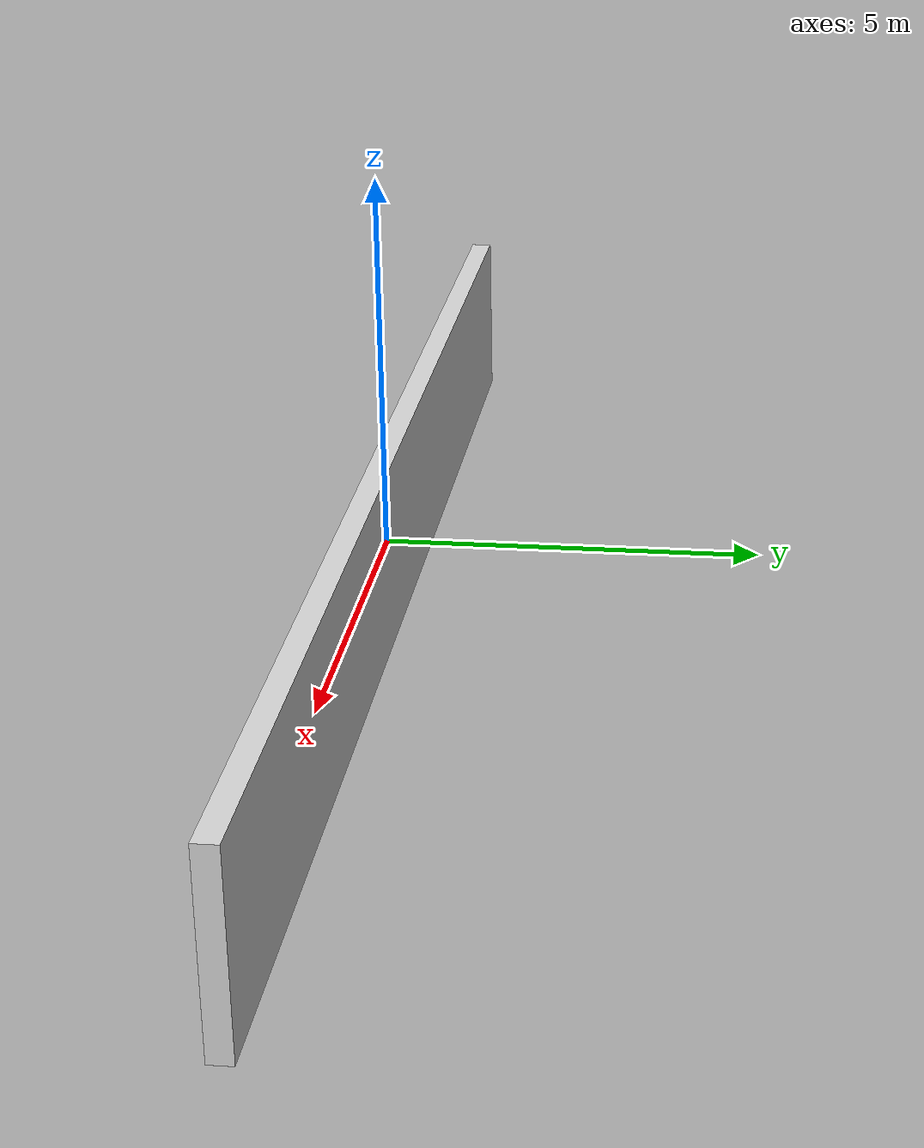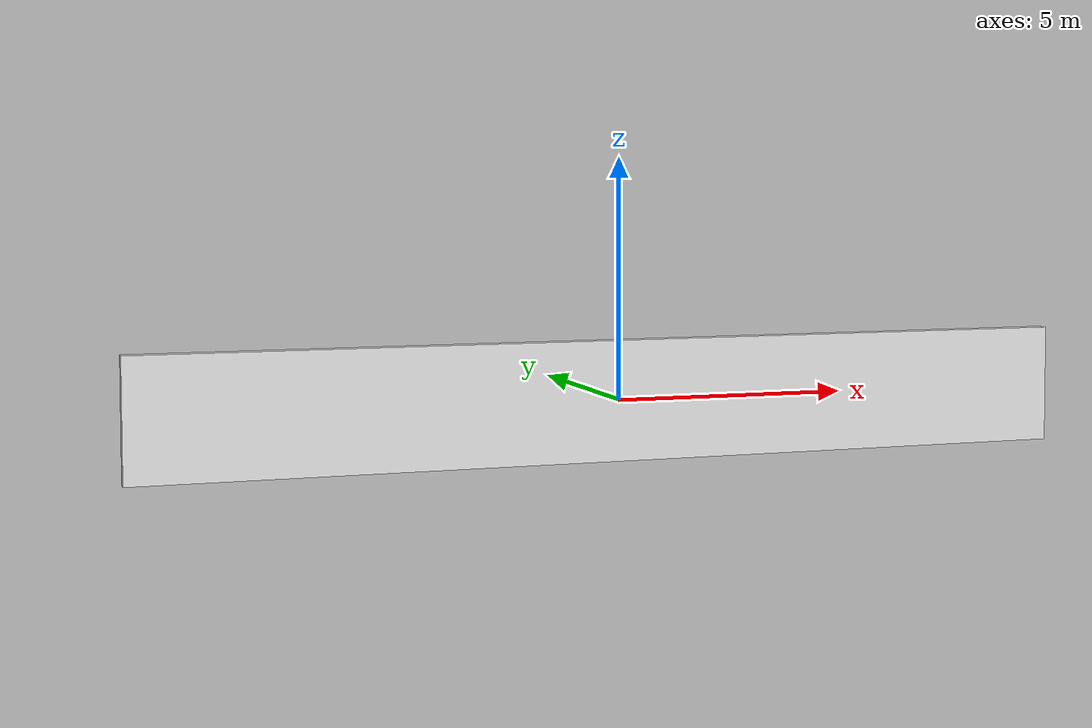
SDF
<?xml version="1.0"?>
<sdf version="1.10">
  <model name="smart_wall">

    <static>true</static>

    <link name="wall_link">

      <!-- Collisione -->
      <collision name="collision">
        <geometry>
          <box>
            <size>20 0.3 2.5</size>
          </box>
        </geometry>
      </collision>

      <!-- Visual -->
      <visual name="visual">
        <geometry>
          <box>
            <size>20 0.3 2.5</size>
          </box>
        </geometry>
        <material>
          <ambient>0.7 0.7 0.7 1</ambient>
          <diffuse>0.85 0.85 0.85 1</diffuse>
        </material>
      </visual>

      <!-- Inerzia -->
      <inertial>
        <mass>50.0</mass>
        <inertia>
          <ixx>5</ixx>
          <iyy>5</iyy>
          <izz>5</izz>
          <ixy>0</ixy>
          <ixz>0</ixz>
          <iyz>0</iyz>
        </inertia>
      </inertial>

    </link>

  </model>
</sdf>
